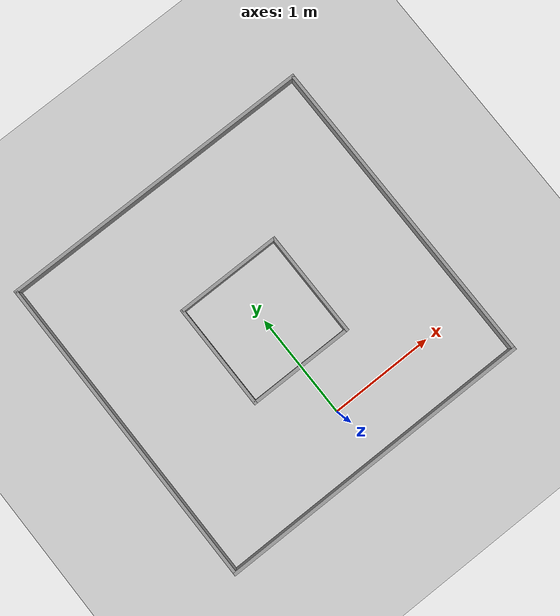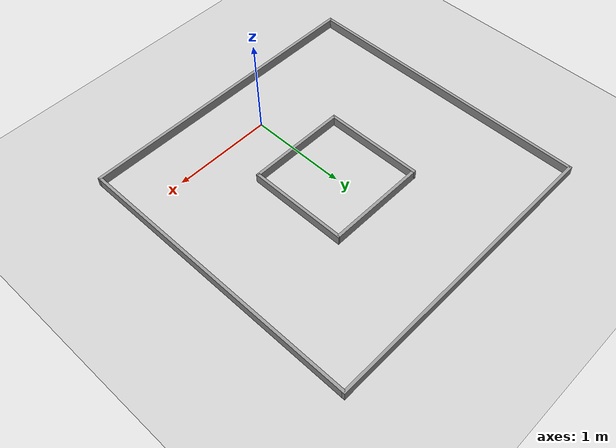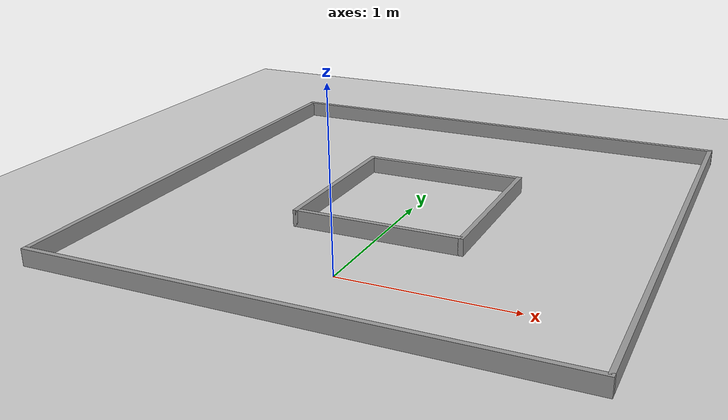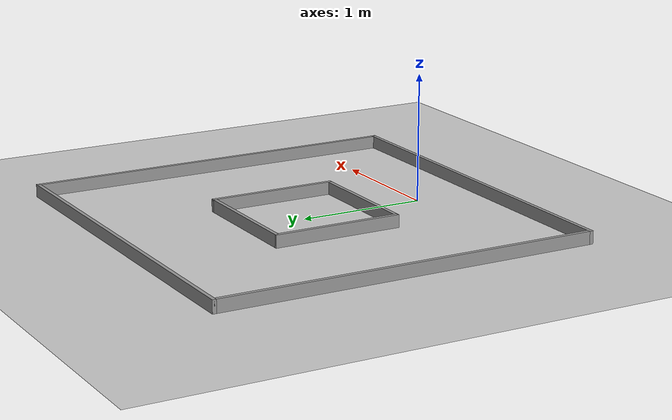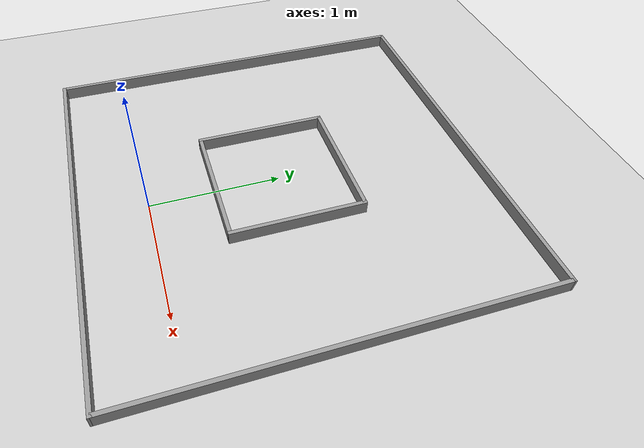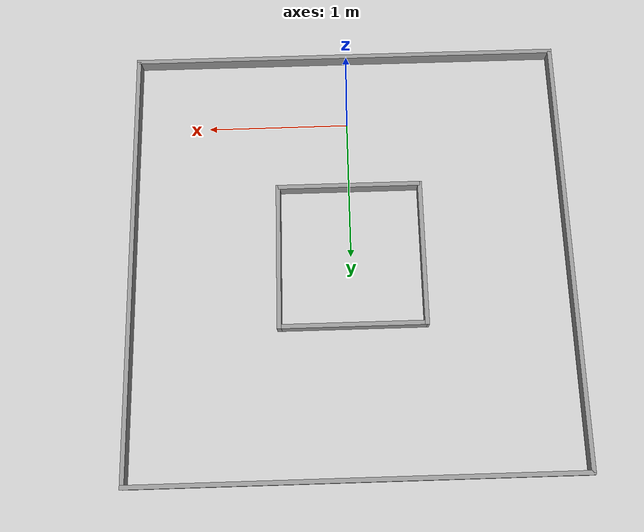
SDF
<sdf version='1.7'>
  <world name='default'>
    <plugin name="gazebo_ros_state" filename="libgazebo_ros_state.so" />

    <light name='sun' type='directional'>
      <cast_shadows>0</cast_shadows>
      <pose>0 0 10 0 -0 0</pose>
      <diffuse>1.0 1.0 1.0 1</diffuse>
      <specular>0.35 0.35 0.35 1</specular>
      <attenuation>
        <range>1000</range>
        <constant>0.75</constant>
        <linear>0.005</linear>
        <quadratic>0.0001</quadratic>
      </attenuation>
      <direction>-0.35 0.15 -0.95</direction>
      <spot>
        <inner_angle>0</inner_angle>
        <outer_angle>0</outer_angle>
        <falloff>0</falloff>
      </spot>
    </light>
    <light name='fill_light' type='directional'>
      <cast_shadows>0</cast_shadows>
      <pose>0 0 8 0 -0 0</pose>
      <diffuse>0.45 0.45 0.45 1</diffuse>
      <specular>0.08 0.08 0.08 1</specular>
      <attenuation>
        <range>1000</range>
        <constant>0.9</constant>
        <linear>0.01</linear>
        <quadratic>0.0001</quadratic>
      </attenuation>
      <direction>0.4 -0.2 -0.9</direction>
      <spot>
        <inner_angle>0</inner_angle>
        <outer_angle>0</outer_angle>
        <falloff>0</falloff>
      </spot>
    </light>
    <model name='ground_plane'>
      <pose>0 1 0 0 0 -1.5708</pose>
      <static>1</static>
      <link name='link'>
        <collision name='collision'>
          <geometry>
            <plane>
              <normal>0 0 1</normal>
              <size>3.2 3.2</size>
            </plane>
          </geometry>
          <surface>
            <contact>
              <collide_bitmask>65535</collide_bitmask>
              <ode />
            </contact>
            <friction>
              <ode>
                <mu>100</mu>
                <mu2>50</mu2>
              </ode>
              <torsional>
                <ode />
              </torsional>
            </friction>
            <bounce />
          </surface>
          <max_contacts>10</max_contacts>
        </collision>
        <visual name='visual'>
          <cast_shadows>0</cast_shadows>
          <geometry>
            <plane>
              <normal>0 0 1</normal>
              <size>3.2 3.2</size>
            </plane>
          </geometry>
          <material>
            <script>
              <uri>
                file://materials/scripts</uri>
              <uri>
                file://materials/textures</uri>
              <name>CustomGround/Track</name>
            </script>
          </material>
        </visual>
        <self_collide>0</self_collide>
        <enable_wind>0</enable_wind>
        <kinematic>0</kinematic>
      </link>
    </model>
    <gravity>0 0 -9.8</gravity>
    <magnetic_field>6e-06 2.3e-05 -4.2e-05</magnetic_field>
    <atmosphere type='adiabatic' />
    <physics type='ode'>
      <max_step_size>0.001</max_step_size>
      <real_time_factor>1</real_time_factor>
      <real_time_update_rate>1000</real_time_update_rate>
    </physics>
    <scene>
      <ambient>0.72 0.72 0.72 1</ambient>
      <background>0.82 0.82 0.82 1</background>
      <shadows>0</shadows>
    </scene>
    <audio>
      <device>default</device>
    </audio>
    <wind />
    <spherical_coordinates>
      <surface_model>EARTH_WGS84</surface_model>
      <latitude_deg>0</latitude_deg>
      <longitude_deg>0</longitude_deg>
      <elevation>0</elevation>
      <heading_deg>0</heading_deg>
    </spherical_coordinates>
    <gui fullscreen='0'>
      <camera name='user_camera'>
        <pose>-1.96355 1 4.55885 0 1.19564 0</pose>
        <view_controller>orbit</view_controller>
        <projection_type>perspective</projection_type>
      </camera>
    </gui>
    <model name='wall_inner_1'>
      <pose>0 0.5 0.05 0 0 0</pose>
      <link name='link'>
        <inertial>
          <mass>1</mass>
          <inertia>
            <ixx>0.166667</ixx>
            <ixy>0</ixy>
            <ixz>0</ixz>
            <iyy>0.166667</iyy>
            <iyz>0</iyz>
            <izz>0.166667</izz>
          </inertia>
          <pose>0 0 0 0 0 0</pose>
        </inertial>
        <collision name='collision'>
          <geometry>
            <box>
              <size>1 0.03 0.1</size>
            </box>
          </geometry>
          <max_contacts>10</max_contacts>
          <surface>
            <contact>
              <ode />
            </contact>
            <bounce />
            <friction>
              <torsional>
                <ode />
              </torsional>
              <ode>
                <mu>0.01</mu>
                <mu2>0.01</mu2>
              </ode>
            </friction>
          </surface>
        </collision>
        <visual name='visual'>
          <geometry>
            <box>
              <size>1 0.03 0.1</size>
            </box>
          </geometry>
          <material>
            <script>
              <name>Gazebo/Grey</name>
              <uri>file://media/materials/scripts/gazebo.material</uri>
            </script>
          </material>
        </visual>
        <self_collide>0</self_collide>
        <enable_wind>0</enable_wind>
        <kinematic>1</kinematic>
      </link>
    </model>

    <model name='wall_outer_1'>
      <pose>0 -0.515 0.05 0 0 0</pose>
      <link name='link'>
        <inertial>
          <mass>1</mass>
          <inertia>
            <ixx>0.166667</ixx>
            <ixy>0</ixy>
            <ixz>0</ixz>
            <iyy>0.166667</iyy>
            <iyz>0</iyz>
            <izz>0.166667</izz>
          </inertia>
          <pose>0 0 0 0 0 0</pose>
        </inertial>
        <collision name='collision'>
          <geometry>
            <box>
              <size>3.06 0.03 0.1</size>
            </box>
          </geometry>
          <max_contacts>10</max_contacts>
          <surface>
            <contact>
              <ode />
            </contact>
            <bounce />
            <friction>
              <torsional>
                <ode />
              </torsional>
              <ode />
            </friction>
          </surface>
        </collision>
        <visual name='visual'>
          <geometry>
            <box>
              <size>3.06 0.03 0.1</size>
            </box>
          </geometry>
          <material>
            <script>
              <name>Gazebo/Grey</name>
              <uri>file://media/materials/scripts/gazebo.material</uri>
            </script>
          </material>
        </visual>
        <self_collide>0</self_collide>
        <enable_wind>0</enable_wind>
        <kinematic>1</kinematic>
      </link>
    </model>

    <model name='wall_inner_2'>
      <pose>0 1.5 0.05 0 0 0</pose>
      <link name='link'>
        <inertial>
          <mass>1</mass>
          <inertia>
            <ixx>0.166667</ixx>
            <ixy>0</ixy>
            <ixz>0</ixz>
            <iyy>0.166667</iyy>
            <iyz>0</iyz>
            <izz>0.166667</izz>
          </inertia>
          <pose>0 0 0 0 0 0</pose>
        </inertial>
        <collision name='collision'>
          <geometry>
            <box>
              <size>1 0.03 0.1</size>
            </box>
          </geometry>
          <max_contacts>10</max_contacts>
          <surface>
            <contact>
              <ode />
            </contact>
            <bounce />
            <friction>
              <torsional>
                <ode />
              </torsional>
              <ode />
            </friction>
          </surface>
        </collision>
        <visual name='visual'>
          <geometry>
            <box>
              <size>1 0.03 0.1</size>
            </box>
          </geometry>
          <material>
            <script>
              <name>Gazebo/Grey</name>
              <uri>file://media/materials/scripts/gazebo.material</uri>
            </script>
          </material>
        </visual>
        <self_collide>0</self_collide>
        <enable_wind>0</enable_wind>
        <kinematic>1</kinematic>
      </link>
    </model>

    <model name='wall_outer_2'>
      <pose>0 2.515 0.05 0 0 0</pose>
      <link name='link'>
        <inertial>
          <mass>1</mass>
          <inertia>
            <ixx>0.166667</ixx>
            <ixy>0</ixy>
            <ixz>0</ixz>
            <iyy>0.166667</iyy>
            <iyz>0</iyz>
            <izz>0.166667</izz>
          </inertia>
          <pose>0 0 0 0 0 0</pose>
        </inertial>
        <collision name='collision'>
          <geometry>
            <box>
              <size>3.06 0.03 0.1</size>
            </box>
          </geometry>
          <max_contacts>10</max_contacts>
          <surface>
            <contact>
              <ode />
            </contact>
            <bounce />
            <friction>
              <torsional>
                <ode />
              </torsional>
              <ode />
            </friction>
          </surface>
        </collision>
        <visual name='visual'>
          <geometry>
            <box>
              <size>3.06 0.03 0.1</size>
            </box>
          </geometry>
          <material>
            <script>
              <name>Gazebo/Grey</name>
              <uri>file://media/materials/scripts/gazebo.material</uri>
            </script>
          </material>
        </visual>
        <self_collide>0</self_collide>
        <enable_wind>0</enable_wind>
        <kinematic>1</kinematic>
      </link>
    </model>

    <model name='wall_inner_3'>
      <pose>0.5 1 0.05 0 0 0</pose>
      <link name='link'>
        <inertial>
          <mass>1</mass>
          <inertia>
            <ixx>0.166667</ixx>
            <ixy>0</ixy>
            <ixz>0</ixz>
            <iyy>0.166667</iyy>
            <iyz>0</iyz>
            <izz>0.166667</izz>
          </inertia>
          <pose>0 0 0 0 0 0</pose>
        </inertial>
        <collision name='collision'>
          <geometry>
            <box>
              <size>0.03 1.03 0.1</size>
            </box>
          </geometry>
          <max_contacts>10</max_contacts>
          <surface>
            <contact>
              <ode />
            </contact>
            <bounce />
            <friction>
              <torsional>
                <ode />
              </torsional>
              <ode />
            </friction>
          </surface>
        </collision>
        <visual name='visual'>
          <geometry>
            <box>
              <size>0.03 1.03 0.1</size>
            </box>
          </geometry>
          <material>
            <script>
              <name>Gazebo/Grey</name>
              <uri>file://media/materials/scripts/gazebo.material</uri>
            </script>
          </material>
        </visual>
        <self_collide>0</self_collide>
        <enable_wind>0</enable_wind>
        <kinematic>1</kinematic>
      </link>
    </model>

    <model name='wall_outer_3'>
      <pose>1.515 1 0.05 0 0 0</pose>
      <link name='link'>
        <inertial>
          <mass>1</mass>
          <inertia>
            <ixx>0.166667</ixx>
            <ixy>0</ixy>
            <ixz>0</ixz>
            <iyy>0.166667</iyy>
            <iyz>0</iyz>
            <izz>0.166667</izz>
          </inertia>
          <pose>0 0 0 0 0 0</pose>
        </inertial>
        <collision name='collision'>
          <geometry>
            <box>
              <size>0.03 3.03 0.1</size>
            </box>
          </geometry>
          <max_contacts>10</max_contacts>
          <surface>
            <contact>
              <ode />
            </contact>
            <bounce />
            <friction>
              <torsional>
                <ode />
              </torsional>
              <ode />
            </friction>
          </surface>
        </collision>
        <visual name='visual'>
          <geometry>
            <box>
              <size>0.03 3.03 0.1</size>
            </box>
          </geometry>
          <material>
            <script>
              <name>Gazebo/Grey</name>
              <uri>file://media/materials/scripts/gazebo.material</uri>
            </script>
          </material>
        </visual>
        <self_collide>0</self_collide>
        <enable_wind>0</enable_wind>
        <kinematic>1</kinematic>
      </link>
    </model>

    <model name='wall_inner_4'>
      <pose>-0.5 1 0.05 0 0 0</pose>
      <link name='link'>
        <inertial>
          <mass>1</mass>
          <inertia>
            <ixx>0.166667</ixx>
            <ixy>0</ixy>
            <ixz>0</ixz>
            <iyy>0.166667</iyy>
            <iyz>0</iyz>
            <izz>0.166667</izz>
          </inertia>
          <pose>0 0 0 0 0 0</pose>
        </inertial>
        <collision name='collision'>
          <geometry>
            <box>
              <size>0.03 1.03 0.1</size>
            </box>
          </geometry>
          <max_contacts>10</max_contacts>
          <surface>
            <contact>
              <ode />
            </contact>
            <bounce />
            <friction>
              <torsional>
                <ode />
              </torsional>
              <ode />
            </friction>
          </surface>
        </collision>
        <visual name='visual'>
          <geometry>
            <box>
              <size>0.03 1.03 0.1</size>
            </box>
          </geometry>
          <material>
            <script>
              <name>Gazebo/Grey</name>
              <uri>file://media/materials/scripts/gazebo.material</uri>
            </script>
          </material>
        </visual>
        <self_collide>0</self_collide>
        <enable_wind>0</enable_wind>
        <kinematic>1</kinematic>
      </link>
    </model>

    <model name='wall_outer_4'>
      <pose>-1.515 1 0.05 0 0 0</pose>
      <link name='link'>
        <inertial>
          <mass>1</mass>
          <inertia>
            <ixx>0.166667</ixx>
            <ixy>0</ixy>
            <ixz>0</ixz>
            <iyy>0.166667</iyy>
            <iyz>0</iyz>
            <izz>0.166667</izz>
          </inertia>
          <pose>0 0 0 0 0 0</pose>
        </inertial>
        <collision name='collision'>
          <geometry>
            <box>
              <size>0.03 3.03 0.1</size>
            </box>
          </geometry>
          <max_contacts>10</max_contacts>
          <surface>
            <contact>
              <ode />
            </contact>
            <bounce />
            <friction>
              <torsional>
                <ode />
              </torsional>
              <ode />
            </friction>
          </surface>
        </collision>
        <visual name='visual'>
          <geometry>
            <box>
              <size>0.03 3.03 0.1</size>
            </box>
          </geometry>
          <material>
            <script>
              <name>Gazebo/Grey</name>
              <uri>file://media/materials/scripts/gazebo.material</uri>
            </script>
          </material>
        </visual>
        <self_collide>0</self_collide>
        <enable_wind>0</enable_wind>
        <kinematic>1</kinematic>
      </link>
    </model>

  </world>
</sdf>
